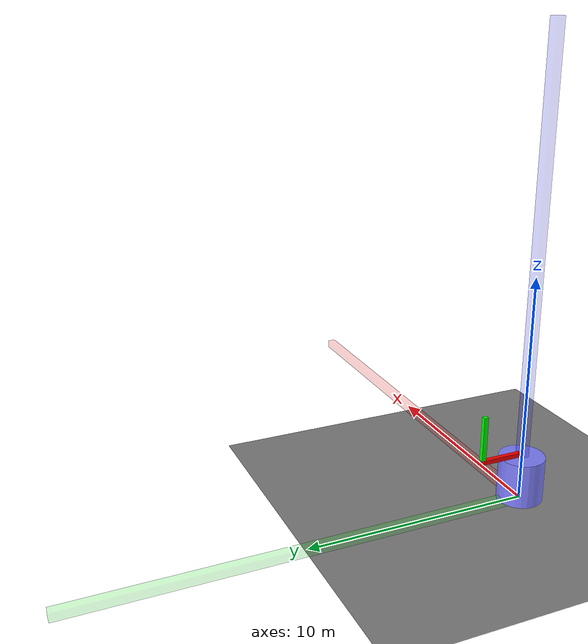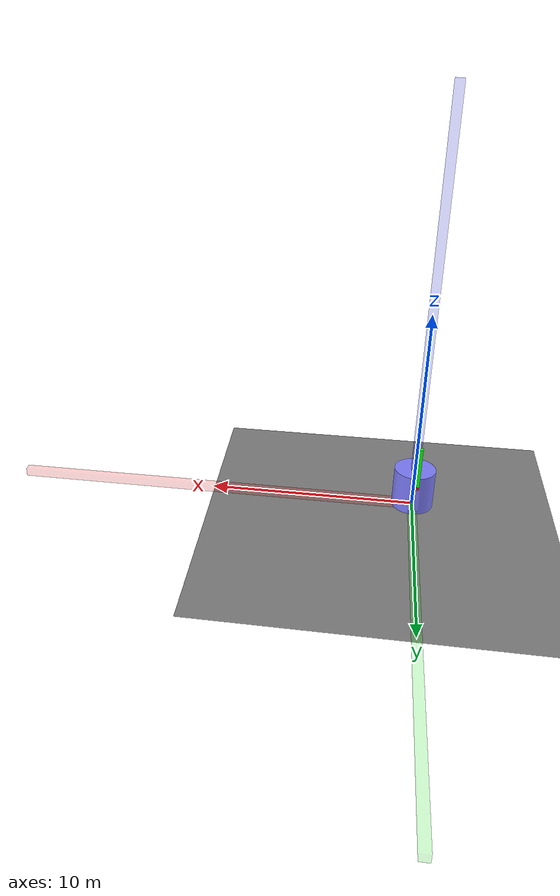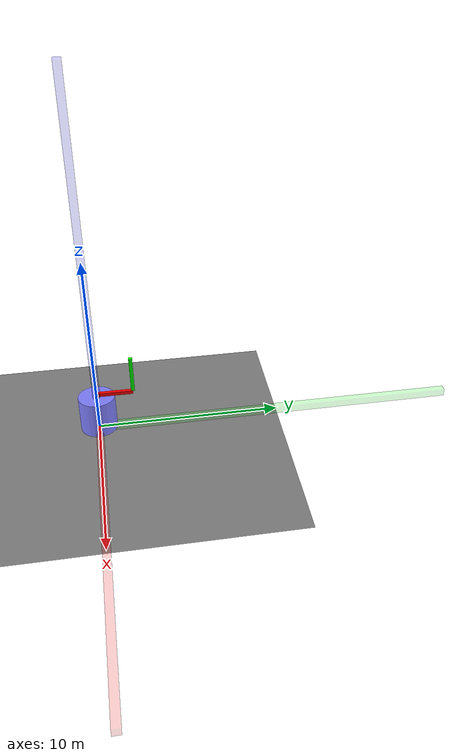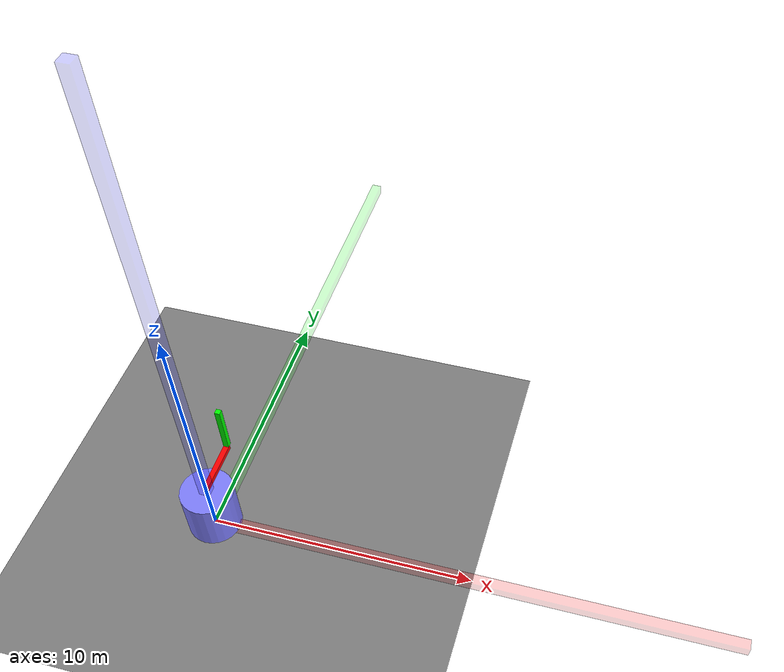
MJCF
<mujoco>
    <compiler angle="degree" coordinate="local" inertiafromgeom="true" />
    <option integrator="RK4" timestep="0.0001" />

    <worldbody>
         <light name="light1" diffuse="1 1 1" pos="0 0 1500" dir="0 0 -1" castshadow="false" mode="targetbody" target="base"/>
         <geom name="ground" type="plane" pos="0 0 -0.2" size="10 10 .2"/>
         <body name="base" pos="0 0 1">
          <geom type="cylinder" size="1 1" rgba=".5 .5 1 1"/>
            <body name="stick1" pos="0 1 1.11"> //わずかに浮かせてます こすれておかしくなっているため 摩擦を０にして解消しようとしましたがダメでした  めり込むのが原因かもしれません
              <geom type="box" size="0.1 1 0.1" rgba="1 0 0 1"/>
              <joint name='motor' type='hinge' pos='0 -1 0' axis='0 0 1'/> //モータの先端が回る
                <body name="stick2" pos="0 1 1.1">
                  <geom type="box" size="0.1 0.1 1" rgba="0 1 0 1"/>
                  <joint name='free' type='hinge' pos='0 0 -1' axis='0 1 0'/>
              </body>
              </body>
            </body>
    <site type="box" rgba="1 0 0 0.2" fromto="0 0 0 20 0 0" size="0.2"/>
    <site type="box" rgba="0 1 0 0.2" fromto="0 0 0 0 20 0" size="0.2"/>
    <site type="box" rgba="0 0 1 0.2" fromto="0 0 0 0 0 20" size="0.2"/>
    </worldbody>
    <actuator>
        <motor name="right" joint="motor" gear="10000"/>
    </actuator>
</mujoco>
